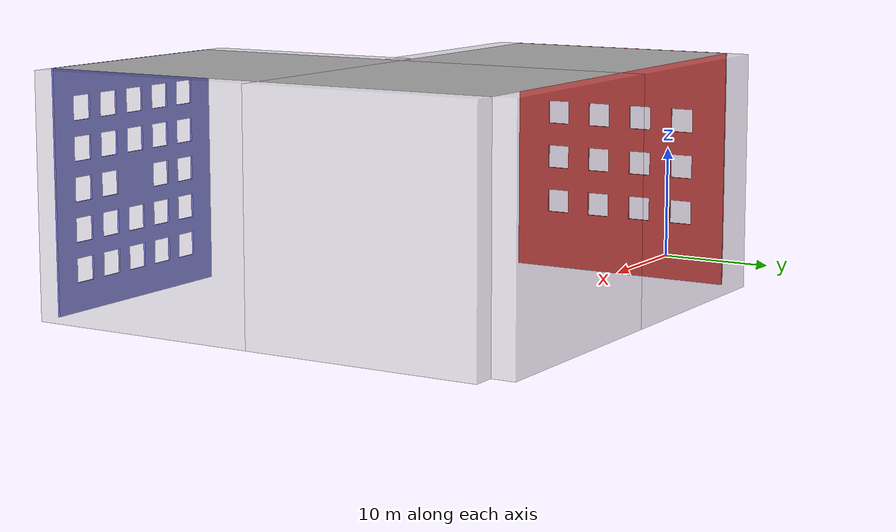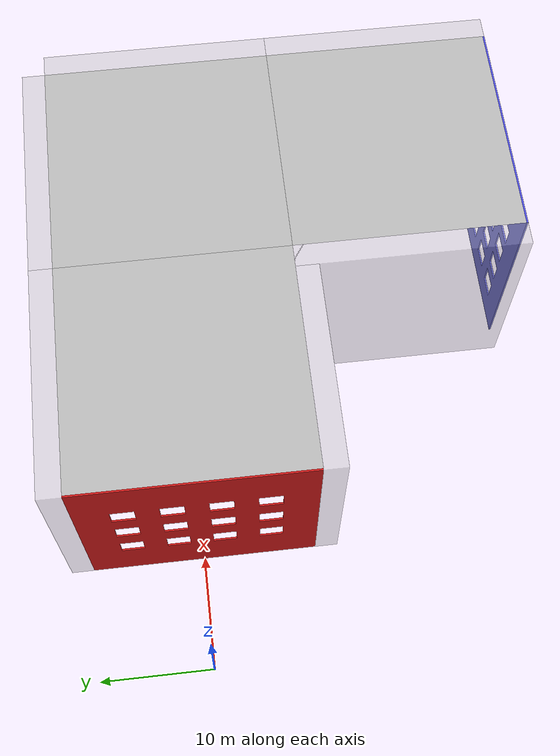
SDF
<?xml version='1.0'?>
<sdf version='1.7'>
  <model name='race_1_0'>
    <link name='link_clone_0'>
      <self_collide>0</self_collide>
      <enable_wind>0</enable_wind>
      <kinematic>0</kinematic>
      <pose>20 11 10 1.5708 -0 0</pose>
      <visual name='visual'>
        <cast_shadows>1</cast_shadows>
        <transparency>0.6</transparency>
        <geometry>
          <box>
            <size>20 20 2</size>
          </box>
        </geometry>
        <material>
          <script>
            <uri>model://new_wall/materials/scripts</uri>
            <uri>model://new_wall/materials/textures/</uri>
            <name>NewWall/Image</name>
          </script>
          <shader type='pixel'/>
        </material>
        <pose>0 0 0 0 -0 0</pose>
      </visual>
      <collision name='collision'>
        <laser_retro>0</laser_retro>
        <max_contacts>10</max_contacts>
        <pose>0 0 0 0 -0 0</pose>
        <geometry>
          <box>
            <size>20 20 2</size>
          </box>
        </geometry>
        <surface>
          <friction>
            <ode>
              <mu>1</mu>
              <mu2>1</mu2>
              <fdir1>0 0 0</fdir1>
              <slip1>0</slip1>
              <slip2>0</slip2>
            </ode>
            <torsional>
              <coefficient>1</coefficient>
              <patch_radius>0</patch_radius>
              <surface_radius>0</surface_radius>
              <use_patch_radius>1</use_patch_radius>
              <ode>
                <slip>0</slip>
              </ode>
            </torsional>
          </friction>
          <bounce>
            <restitution_coefficient>0</restitution_coefficient>
            <threshold>1e+06</threshold>
          </bounce>
          <contact>
            <collide_without_contact>0</collide_without_contact>
            <collide_without_contact_bitmask>1</collide_without_contact_bitmask>
            <collide_bitmask>1</collide_bitmask>
            <ode>
              <soft_cfm>0</soft_cfm>
              <soft_erp>0.2</soft_erp>
              <kp>1e+13</kp>
              <kd>1</kd>
              <max_vel>0.01</max_vel>
              <min_depth>0</min_depth>
            </ode>
            <bullet>
              <split_impulse>1</split_impulse>
              <split_impulse_penetration_threshold>-0.01</split_impulse_penetration_threshold>
              <soft_cfm>0</soft_cfm>
              <soft_erp>0.2</soft_erp>
              <kp>1e+13</kp>
              <kd>1</kd>
            </bullet>
          </contact>
        </surface>
      </collision>
    </link>

    <link name='link_clone_1'>
      <self_collide>0</self_collide>
      <enable_wind>0</enable_wind>
      <kinematic>0</kinematic>
      <pose>20 -11 10 1.5708 -0 0</pose>
      <visual name='visual'>
        <cast_shadows>1</cast_shadows>
        <transparency>0.6</transparency>
        <geometry>
          <box>
            <size>20 20 2</size>
          </box>
        </geometry>
        <material>
          <script>
            <uri>model://new_wall/materials/scripts</uri>
            <uri>model://new_wall/materials/textures/</uri>
            <name>NewWall/Image</name>
          </script>
          <shader type='pixel'/>
        </material>
        <pose>0 0 0 0 -0 0</pose>
      </visual>
      <collision name='collision'>
        <laser_retro>0</laser_retro>
        <max_contacts>10</max_contacts>
        <pose>0 0 0 0 -0 0</pose>
        <geometry>
          <box>
            <size>20 20 2</size>
          </box>
        </geometry>
        <surface>
          <friction>
            <ode>
              <mu>1</mu>
              <mu2>1</mu2>
              <fdir1>0 0 0</fdir1>
              <slip1>0</slip1>
              <slip2>0</slip2>
            </ode>
            <torsional>
              <coefficient>1</coefficient>
              <patch_radius>0</patch_radius>
              <surface_radius>0</surface_radius>
              <use_patch_radius>1</use_patch_radius>
              <ode>
                <slip>0</slip>
              </ode>
            </torsional>
          </friction>
          <bounce>
            <restitution_coefficient>0</restitution_coefficient>
            <threshold>1e+06</threshold>
          </bounce>
          <contact>
            <collide_without_contact>0</collide_without_contact>
            <collide_without_contact_bitmask>1</collide_without_contact_bitmask>
            <collide_bitmask>1</collide_bitmask>
            <ode>
              <soft_cfm>0</soft_cfm>
              <soft_erp>0.2</soft_erp>
              <kp>1e+13</kp>
              <kd>1</kd>
              <max_vel>0.01</max_vel>
              <min_depth>0</min_depth>
            </ode>
            <bullet>
              <split_impulse>1</split_impulse>
              <split_impulse_penetration_threshold>-0.01</split_impulse_penetration_threshold>
              <soft_cfm>0</soft_cfm>
              <soft_erp>0.2</soft_erp>
              <kp>1e+13</kp>
              <kd>1</kd>
            </bullet>
          </contact>
        </surface>
      </collision>
    </link>

    <link name='link_clone_2'>
      <self_collide>0</self_collide>
      <enable_wind>0</enable_wind>
      <kinematic>0</kinematic>
      <pose>40 11 10 1.5708 -0 0</pose>
      <visual name='visual'>
        <cast_shadows>1</cast_shadows>
        <transparency>0.6</transparency>
        <geometry>
          <box>
            <size>20 20 2</size>
          </box>
        </geometry>
        <material>
          <script>
            <uri>model://new_wall/materials/scripts</uri>
            <uri>model://new_wall/materials/textures/</uri>
            <name>NewWall/Image</name>
          </script>
          <shader type='pixel'/>
        </material>
        <pose>0 0 0 0 -0 0</pose>
      </visual>
      <collision name='collision'>
        <laser_retro>0</laser_retro>
        <max_contacts>10</max_contacts>
        <pose>0 0 0 0 -0 0</pose>
        <geometry>
          <box>
            <size>20 20 2</size>
          </box>
        </geometry>
        <surface>
          <friction>
            <ode>
              <mu>1</mu>
              <mu2>1</mu2>
              <fdir1>0 0 0</fdir1>
              <slip1>0</slip1>
              <slip2>0</slip2>
            </ode>
            <torsional>
              <coefficient>1</coefficient>
              <patch_radius>0</patch_radius>
              <surface_radius>0</surface_radius>
              <use_patch_radius>1</use_patch_radius>
              <ode>
                <slip>0</slip>
              </ode>
            </torsional>
          </friction>
          <bounce>
            <restitution_coefficient>0</restitution_coefficient>
            <threshold>1e+06</threshold>
          </bounce>
          <contact>
            <collide_without_contact>0</collide_without_contact>
            <collide_without_contact_bitmask>1</collide_without_contact_bitmask>
            <collide_bitmask>1</collide_bitmask>
            <ode>
              <soft_cfm>0</soft_cfm>
              <soft_erp>0.2</soft_erp>
              <kp>1e+13</kp>
              <kd>1</kd>
              <max_vel>0.01</max_vel>
              <min_depth>0</min_depth>
            </ode>
            <bullet>
              <split_impulse>1</split_impulse>
              <split_impulse_penetration_threshold>-0.01</split_impulse_penetration_threshold>
              <soft_cfm>0</soft_cfm>
              <soft_erp>0.2</soft_erp>
              <kp>1e+13</kp>
              <kd>1</kd>
            </bullet>
          </contact>
        </surface>
      </collision>
    </link>

    <link name='link_clone_3_clone'>
      <self_collide>0</self_collide>
      <enable_wind>0</enable_wind>
      <kinematic>0</kinematic>
      <pose>51 0 10 1.5708 0 1.5708</pose>
      <visual name='visual'>
        <cast_shadows>1</cast_shadows>
        <transparency>0.6</transparency>
        <geometry>
          <box>
            <size>20 20 2</size>
          </box>
        </geometry>
        <material>
          <script>
            <uri>model://new_wall/materials/scripts</uri>
            <uri>model://new_wall/materials/textures/</uri>
            <name>NewWall/Image</name>
          </script>
          <shader type='pixel'/>
        </material>
        <pose>0 0 0 0 -0 0</pose>
      </visual>
      <collision name='collision'>
        <laser_retro>0</laser_retro>
        <max_contacts>10</max_contacts>
        <pose>0 0 0 0 -0 0</pose>
        <geometry>
          <box>
            <size>20 20 2</size>
          </box>
        </geometry>
        <surface>
          <friction>
            <ode>
              <mu>1</mu>
              <mu2>1</mu2>
              <fdir1>0 0 0</fdir1>
              <slip1>0</slip1>
              <slip2>0</slip2>
            </ode>
            <torsional>
              <coefficient>1</coefficient>
              <patch_radius>0</patch_radius>
              <surface_radius>0</surface_radius>
              <use_patch_radius>1</use_patch_radius>
              <ode>
                <slip>0</slip>
              </ode>
            </torsional>
          </friction>
          <bounce>
            <restitution_coefficient>0</restitution_coefficient>
            <threshold>1e+06</threshold>
          </bounce>
          <contact>
            <collide_without_contact>0</collide_without_contact>
            <collide_without_contact_bitmask>1</collide_without_contact_bitmask>
            <collide_bitmask>1</collide_bitmask>
            <ode>
              <soft_cfm>0</soft_cfm>
              <soft_erp>0.2</soft_erp>
              <kp>1e+13</kp>
              <kd>1</kd>
              <max_vel>0.01</max_vel>
              <min_depth>0</min_depth>
            </ode>
            <bullet>
              <split_impulse>1</split_impulse>
              <split_impulse_penetration_threshold>-0.01</split_impulse_penetration_threshold>
              <soft_cfm>0</soft_cfm>
              <soft_erp>0.2</soft_erp>
              <kp>1e+13</kp>
              <kd>1</kd>
            </bullet>
          </contact>
        </surface>
      </collision>
    </link>

    <link name='link_clone_3_clone_0'>
      <self_collide>0</self_collide>
      <enable_wind>0</enable_wind>
      <kinematic>0</kinematic>
      <pose>51 -20 10 1.5708 0 1.5708</pose>
      <visual name='visual'>
        <cast_shadows>1</cast_shadows>
        <transparency>0.6</transparency>
        <geometry>
          <box>
            <size>20 20 2</size>
          </box>
        </geometry>
        <material>
          <script>
            <uri>model://new_wall/materials/scripts</uri>
            <uri>model://new_wall/materials/textures/</uri>
            <name>NewWall/Image</name>
          </script>
          <shader type='pixel'/>
        </material>
        <pose>0 0 0 0 -0 0</pose>
      </visual>
      <collision name='collision'>
        <laser_retro>0</laser_retro>
        <max_contacts>10</max_contacts>
        <pose>0 0 0 0 -0 0</pose>
        <geometry>
          <box>
            <size>20 20 2</size>
          </box>
        </geometry>
        <surface>
          <friction>
            <ode>
              <mu>1</mu>
              <mu2>1</mu2>
              <fdir1>0 0 0</fdir1>
              <slip1>0</slip1>
              <slip2>0</slip2>
            </ode>
            <torsional>
              <coefficient>1</coefficient>
              <patch_radius>0</patch_radius>
              <surface_radius>0</surface_radius>
              <use_patch_radius>1</use_patch_radius>
              <ode>
                <slip>0</slip>
              </ode>
            </torsional>
          </friction>
          <bounce>
            <restitution_coefficient>0</restitution_coefficient>
            <threshold>1e+06</threshold>
          </bounce>
          <contact>
            <collide_without_contact>0</collide_without_contact>
            <collide_without_contact_bitmask>1</collide_without_contact_bitmask>
            <collide_bitmask>1</collide_bitmask>
            <ode>
              <soft_cfm>0</soft_cfm>
              <soft_erp>0.2</soft_erp>
              <kp>1e+13</kp>
              <kd>1</kd>
              <max_vel>0.01</max_vel>
              <min_depth>0</min_depth>
            </ode>
            <bullet>
              <split_impulse>1</split_impulse>
              <split_impulse_penetration_threshold>-0.01</split_impulse_penetration_threshold>
              <soft_cfm>0</soft_cfm>
              <soft_erp>0.2</soft_erp>
              <kp>1e+13</kp>
              <kd>1</kd>
            </bullet>
          </contact>
        </surface>
      </collision>
    </link>

    <link name='link_clone_3_clone_1'>
      <self_collide>0</self_collide>
      <enable_wind>0</enable_wind>
      <kinematic>0</kinematic>
      <pose>29 -20 10 1.5708 0 1.5708</pose>
      <visual name='visual'>
        <cast_shadows>1</cast_shadows>
        <transparency>0.6</transparency>
        <geometry>
          <box>
            <size>20 20 2</size>
          </box>
        </geometry>
        <material>
          <script>
            <uri>model://new_wall/materials/scripts</uri>
            <uri>model://new_wall/materials/textures/</uri>
            <name>NewWall/Image</name>
          </script>
          <shader type='pixel'/>
        </material>
        <pose>0 0 0 0 -0 0</pose>
      </visual>
      <collision name='collision'>
        <laser_retro>0</laser_retro>
        <max_contacts>10</max_contacts>
        <pose>0 0 0 0 -0 0</pose>
        <geometry>
          <box>
            <size>20 20 2</size>
          </box>
        </geometry>
        <surface>
          <friction>
            <ode>
              <mu>1</mu>
              <mu2>1</mu2>
              <fdir1>0 0 0</fdir1>
              <slip1>0</slip1>
              <slip2>0</slip2>
            </ode>
            <torsional>
              <coefficient>1</coefficient>
              <patch_radius>0</patch_radius>
              <surface_radius>0</surface_radius>
              <use_patch_radius>1</use_patch_radius>
              <ode>
                <slip>0</slip>
              </ode>
            </torsional>
          </friction>
          <bounce>
            <restitution_coefficient>0</restitution_coefficient>
            <threshold>1e+06</threshold>
          </bounce>
          <contact>
            <collide_without_contact>0</collide_without_contact>
            <collide_without_contact_bitmask>1</collide_without_contact_bitmask>
            <collide_bitmask>1</collide_bitmask>
            <ode>
              <soft_cfm>0</soft_cfm>
              <soft_erp>0.2</soft_erp>
              <kp>1e+13</kp>
              <kd>1</kd>
              <max_vel>0.01</max_vel>
              <min_depth>0</min_depth>
            </ode>
            <bullet>
              <split_impulse>1</split_impulse>
              <split_impulse_penetration_threshold>-0.01</split_impulse_penetration_threshold>
              <soft_cfm>0</soft_cfm>
              <soft_erp>0.2</soft_erp>
              <kp>1e+13</kp>
              <kd>1</kd>
            </bullet>
          </contact>
        </surface>
      </collision>
    </link>

    <model name='oneSidedPlane_2_clone'>
      <static>1</static>
      <link name='link'>
        <collision name='collision'>
          <geometry>
            <box>
              <size>20 20 0.1</size>
            </box>
          </geometry>
          <max_contacts>10</max_contacts>
          <surface>
            <contact>
              <ode/>
            </contact>
            <bounce/>
            <friction>
              <torsional>
                <ode/>
              </torsional>
              <ode/>
            </friction>
          </surface>
        </collision>
        <visual name='visual'>
          <cast_shadows>0</cast_shadows>
          <geometry>
            <mesh>
              <scale>1 1 1</scale>
              <uri>model://oneSidedPlane_2/wall1.obj</uri>
            </mesh>
          </geometry>
        </visual>
        <self_collide>0</self_collide>
        <enable_wind>0</enable_wind>
        <kinematic>0</kinematic>
      </link>
      <pose>20 0 20 0 -0 0</pose>
    </model>
    <model name='oneSidedPlane_2_clone_0'>
      <static>1</static>
      <link name='link'>
        <collision name='collision'>
          <geometry>
            <box>
              <size>20 20 0.1</size>
            </box>
          </geometry>
          <max_contacts>10</max_contacts>
          <surface>
            <contact>
              <ode/>
            </contact>
            <bounce/>
            <friction>
              <torsional>
                <ode/>
              </torsional>
              <ode/>
            </friction>
          </surface>
        </collision>
        <visual name='visual'>
          <cast_shadows>0</cast_shadows>
          <geometry>
            <mesh>
              <scale>1 1 1</scale>
              <uri>model://oneSidedPlane_2/wall1.obj</uri>
            </mesh>
          </geometry>
        </visual>
        <self_collide>0</self_collide>
        <enable_wind>0</enable_wind>
        <kinematic>0</kinematic>
      </link>
      <pose>40 0 20 0 -0 0</pose>
    </model>
    <model name='oneSidedPlane_2_clone_1'>
      <static>1</static>
      <link name='link'>
        <collision name='collision'>
          <geometry>
            <box>
              <size>20 20 0.1</size>
            </box>
          </geometry>
          <max_contacts>10</max_contacts>
          <surface>
            <contact>
              <ode/>
            </contact>
            <bounce/>
            <friction>
              <torsional>
                <ode/>
              </torsional>
              <ode/>
            </friction>
          </surface>
        </collision>
        <visual name='visual'>
          <cast_shadows>0</cast_shadows>
          <geometry>
            <mesh>
              <scale>1 1 1</scale>
              <uri>model://oneSidedPlane_2/wall1.obj</uri>
            </mesh>
          </geometry>
        </visual>
        <self_collide>0</self_collide>
        <enable_wind>0</enable_wind>
        <kinematic>0</kinematic>
      </link>
      <pose>40 -20 20 0 -0 0</pose>
    </model>

    <model name='partition_1'>
      <static>1</static>
      <link name='link'>
        <pose>-10 0 0 1.57 -0 0</pose>
        <collision name='collision'>
          <geometry>
            <mesh>
              <scale>0.001 0.001 0.001</scale>
              <uri>model://partition_1/model.stl</uri>
            </mesh>
          </geometry>
        </collision>
        <visual name='visual'>
          <cast_shadows>1</cast_shadows>
          <geometry>
            <mesh>
              <scale>0.001 0.001 0.001</scale>
              <uri>model://partition_1/model.stl</uri>
            </mesh>
          </geometry>
          <material>
            <ambient>0.8 0.1 0.1 1</ambient>
            <diffuse>0.8 0.1 0.1 1</diffuse>
            <specular>0.1 0.1 0.1 0</specular>
            <emissive>0.2 0.1 0.1 1</emissive>
          </material>
        </visual>
      </link>
      <pose>10 0 0 0 -0 1.5708</pose>
    </model>

    <model name='partition_11'>
      <static>1</static>
      <link name='link'>
        <pose>-10 0 0 1.57 -0 0</pose>
        <collision name='collision'>
          <geometry>
            <mesh>
              <scale>0.001 0.001 0.001</scale>
              <uri>model://partition_11/model.stl</uri>
            </mesh>
          </geometry>
        </collision>
        <visual name='visual'>
          <cast_shadows>1</cast_shadows>
          <geometry>
            <mesh>
              <scale>0.001 0.001 0.001</scale>
              <uri>model://partition_11/model.stl</uri>
            </mesh>
          </geometry>
          <material>
            <ambient>0.3 0.3 0.9 1</ambient>
            <diffuse>0.3 0.3 0.9 1</diffuse>
            <specular>0.1 0.1 0.1 0</specular>
            <emissive>0.2 0.2 0.3 1</emissive>
          </material>
        </visual>
      </link>
      <pose>40 -30 0 0 0 -3.14159</pose>
    </model>

    <static>1</static>
    <allow_auto_disable>1</allow_auto_disable>
  </model>
</sdf>
